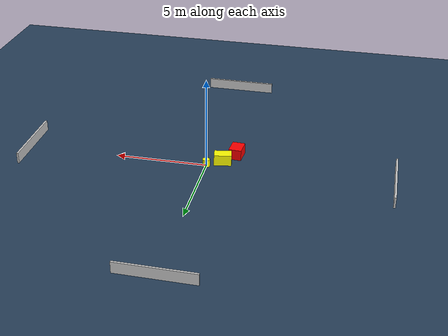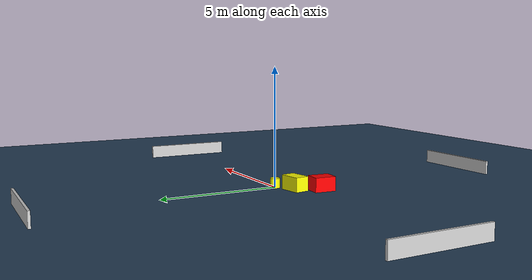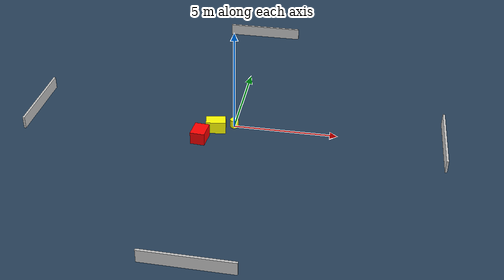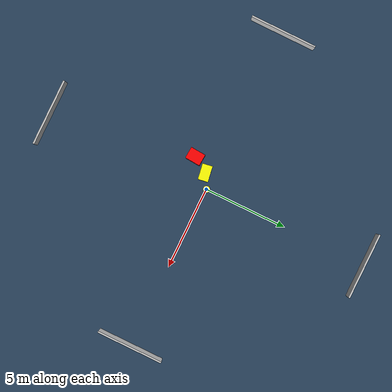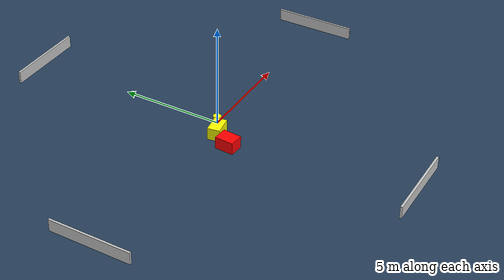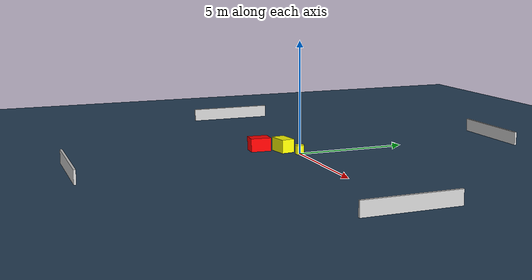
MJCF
<?xml version="1.0" ?>
<mujoco model="generated_environment">
  <option timestep="0.01" integrator="RK4" cone="elliptic"/>
  <default>
    <geom density="1"/>
  </default>
  <asset>
    <texture builtin="gradient" height="3072" name="skybox" rgb1="0.3 0.5 0.7" rgb2="0 0 0" type="skybox" width="512"/>
    <texture builtin="checker" height="300" name="groundplane" rgb1="0.2 0.3 0.4" rgb2="0.1 0.2 0.3" type="2d" width="300"/>
    <material name="groundplane" reflectance="0.2" texrepeat="5 5" texture="groundplane"/>
  </asset>
  <worldbody>
    <light dir="0 0 -1" directional="true" pos="0 0 1.5"/>
    <geom condim="3" friction="0.5 0.005 0.001" material="groundplane" name="floor" pos="0 0 0" size="0 0 0.05" type="plane"/>
    <body name="walls">
      <geom name="wall_1" condim="4" pos="-10.0 0.0 0.3" rgba="0.800000011920929 0.800000011920929 0.800000011920929 1.0" size="0.05 2.0 0.3" type="box"/>
      <geom name="wall_2" condim="4" pos="10.0 0.0 0.3" rgba="0.800000011920929 0.800000011920929 0.800000011920929 1.0" size="0.05 2.0 0.3" type="box"/>
      <geom name="wall_3" condim="4" pos="0.0 -10.0 0.3" rgba="0.800000011920929 0.800000011920929 0.800000011920929 1.0" size="2.0 0.05 0.3" type="box"/>
      <geom name="wall_4" condim="4" pos="0.0 10.0 0.3" rgba="0.800000011920929 0.800000011920929 0.800000011920929 1.0" size="2.0 0.05 0.3" type="box"/>
    </body>
    <body name="robot">
      <joint name="joint_x" type="slide" pos="0 0 0" axis="1 0 0"/>
      <joint name="joint_y" type="slide" pos="0 0 0" axis="0 1 0"/>
      <geom name="robot" type="cylinder" pos="0.0 0.0 0.2" size="0.2 0.2 0.0" mass="5.0" friction="1.0 0.005 0.0001" condim="4" rgba="1.0 1.0 0.0 1.0"/>
    </body>
    <body name="obstacle_1_movable">
      <geom name="obstacle_1_movable" condim="4" pos="-0.8146273880828505 -0.4831773134063841 0.3" euler="0 0 279.073741713108" friction="0.0 0.005 0.001" rgba="1.0 1.0 0.0 1.0" size="0.29896062147301916 0.47082272231577593 0.3" type="box" mass="0.1"/>
      <joint type="free"/>
    </body>
    <body name="obstacle_2_static">
      <geom name="obstacle_2_static" condim="4" pos="-1.4062732859373268 -1.402318405597203 0.3" euler="0 0 85.95850061608769" friction="0.0 0.005 0.001" rgba="1.0 0.0 0.0 1.0" size="0.4552191952769909 0.3466008912029698 0.3" type="box"/>
    </body>
  </worldbody>
  <actuator>
    <motor name="actuator_x" joint="joint_x" gear="1" ctrlrange="-1 1"/>
    <motor name="actuator_y" joint="joint_y" gear="1" ctrlrange="-1 1"/>
  </actuator>
</mujoco>
